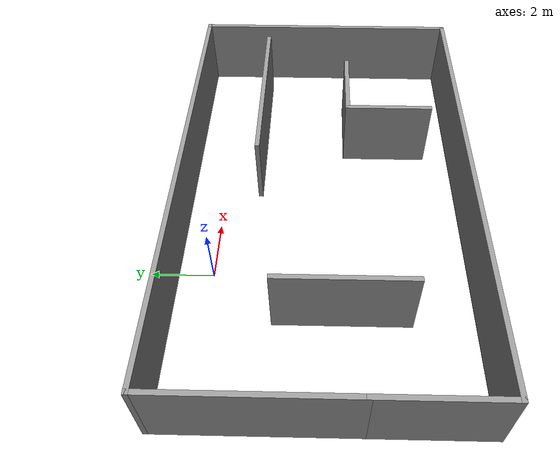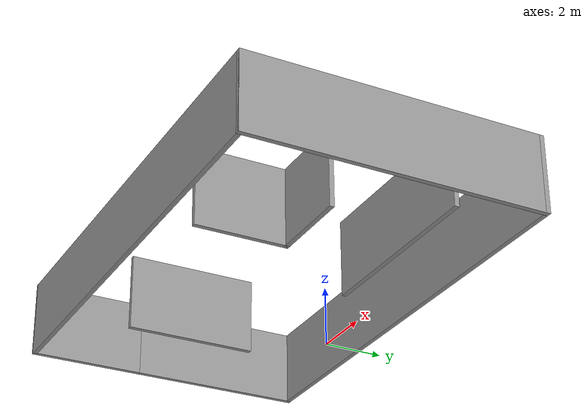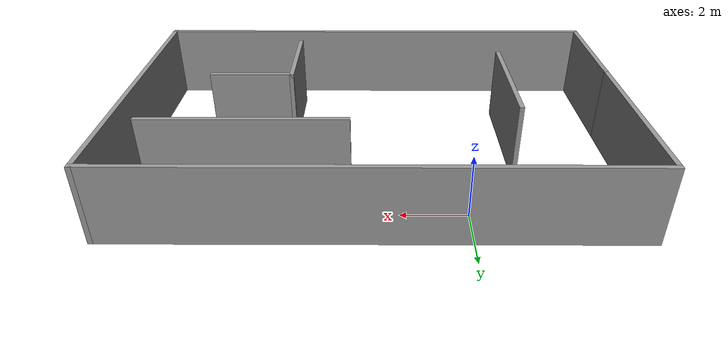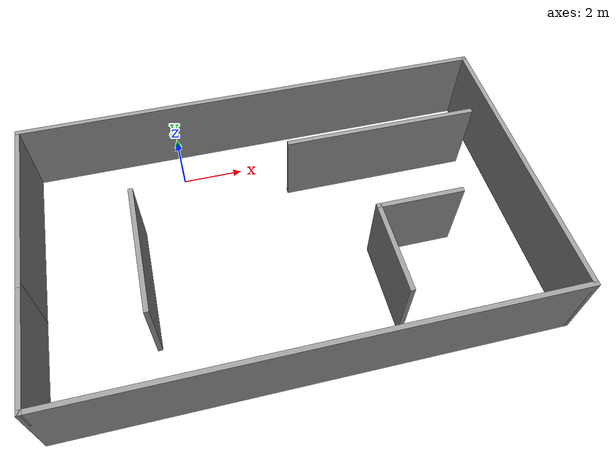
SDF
<?xml version='1.0'?>
<sdf version='1.7'>
  <model name='stan'>
    <pose>2.72187 -3.48309 0 0 -0 0</pose>
    <link name='Wall_10'>
      <collision name='Wall_10_Collision'>
        <geometry>
          <box>
            <size>6.25 0.15 2.5</size>
          </box>
        </geometry>
        <pose>0 0 1.25 0 -0 0</pose>
      </collision>
      <visual name='Wall_10_Visual'>
        <pose>0 0 1.25 0 -0 0</pose>
        <geometry>
          <box>
            <size>6.25 0.15 2.5</size>
          </box>
        </geometry>
        <material>
          <script>
            <uri>file://media/materials/scripts/gazebo.material</uri>
            <name>Gazebo/Grey</name>
          </script>
          <ambient>1 1 1 1</ambient>
        </material>
        <meta>
          <layer>0</layer>
        </meta>
      </visual>
      <pose>3.8179 2.2318 0 0 -0 0</pose>
    </link>
    <link name='Wall_12'>
      <collision name='Wall_12_Collision'>
        <geometry>
          <box>
            <size>3 0.15 2.5</size>
          </box>
        </geometry>
        <pose>0 0 1.25 0 -0 0</pose>
      </collision>
      <visual name='Wall_12_Visual'>
        <pose>0 0 1.25 0 -0 0</pose>
        <geometry>
          <box>
            <size>3 0.15 2.5</size>
          </box>
        </geometry>
        <material>
          <script>
            <uri>file://media/materials/scripts/gazebo.material</uri>
            <name>Gazebo/Grey</name>
          </script>
          <ambient>1 1 1 1</ambient>
        </material>
        <meta>
          <layer>0</layer>
        </meta>
      </visual>
      <pose>2.73791 -2.21805 0 0 -0 1.5708</pose>
    </link>
    <link name='Wall_13'>
      <collision name='Wall_13_Collision'>
        <geometry>
          <box>
            <size>2.75 0.15 2.5</size>
          </box>
        </geometry>
        <pose>0 0 1.25 0 -0 0</pose>
      </collision>
      <visual name='Wall_13_Visual'>
        <pose>0 0 1.25 0 -0 0</pose>
        <geometry>
          <box>
            <size>2.75 0.15 2.5</size>
          </box>
        </geometry>
        <material>
          <script>
            <uri>file://media/materials/scripts/gazebo.material</uri>
            <name>Gazebo/Grey</name>
          </script>
          <ambient>1 1 1 1</ambient>
        </material>
        <meta>
          <layer>0</layer>
        </meta>
      </visual>
      <pose>4.03791 -0.79305 0 0 -0 0</pose>
    </link>
    <link name='Wall_2'>
      <collision name='Wall_2_Collision'>
        <geometry>
          <box>
            <size>3.75 0.15 2.5</size>
          </box>
        </geometry>
        <pose>0 0 1.25 0 -0 0</pose>
      </collision>
      <visual name='Wall_2_Visual'>
        <pose>0 0 1.25 0 -0 0</pose>
        <geometry>
          <box>
            <size>3.75 0.15 2.5</size>
          </box>
        </geometry>
        <material>
          <script>
            <uri>file://media/materials/scripts/gazebo.material</uri>
            <name>Gazebo/Grey</name>
          </script>
          <ambient>1 1 1 1</ambient>
        </material>
        <meta>
          <layer>0</layer>
        </meta>
      </visual>
      <pose>-7.675 -2.875 0 0 -0 -1.5708</pose>
    </link>
    <link name='Wall_3'>
      <collision name='Wall_3_Collision'>
        <geometry>
          <box>
            <size>15.5 0.15 2.5</size>
          </box>
        </geometry>
        <pose>0 0 1.25 0 -0 0</pose>
      </collision>
      <visual name='Wall_3_Visual'>
        <pose>0 0 1.25 0 -0 0</pose>
        <geometry>
          <box>
            <size>15.5 0.15 2.5</size>
          </box>
        </geometry>
        <material>
          <script>
            <uri>file://media/materials/scripts/gazebo.material</uri>
            <name>Gazebo/Grey</name>
          </script>
          <ambient>1 1 1 1</ambient>
        </material>
        <meta>
          <layer>0</layer>
        </meta>
      </visual>
      <pose>-0 -4.675 0 0 -0 0</pose>
    </link>
    <link name='Wall_4'>
      <collision name='Wall_4_Collision'>
        <geometry>
          <box>
            <size>9.5 0.15 2.5</size>
          </box>
        </geometry>
        <pose>0 0 1.25 0 -0 0</pose>
      </collision>
      <visual name='Wall_4_Visual'>
        <pose>0 0 1.25 0 -0 0</pose>
        <geometry>
          <box>
            <size>9.5 0.15 2.5</size>
          </box>
        </geometry>
        <material>
          <script>
            <uri>file://media/materials/scripts/gazebo.material</uri>
            <name>Gazebo/Grey</name>
          </script>
          <ambient>1 1 1 1</ambient>
        </material>
        <meta>
          <layer>0</layer>
        </meta>
      </visual>
      <pose>7.675 0 0 0 -0 1.5708</pose>
    </link>
    <link name='Wall_5'>
      <collision name='Wall_5_Collision'>
        <geometry>
          <box>
            <size>15.5 0.15 2.5</size>
          </box>
        </geometry>
        <pose>0 0 1.25 0 -0 0</pose>
      </collision>
      <visual name='Wall_5_Visual'>
        <pose>0 0 1.25 0 -0 0</pose>
        <geometry>
          <box>
            <size>15.5 0.15 2.5</size>
          </box>
        </geometry>
        <material>
          <script>
            <uri>file://media/materials/scripts/gazebo.material</uri>
            <name>Gazebo/Grey</name>
          </script>
          <ambient>1 1 1 1</ambient>
        </material>
        <meta>
          <layer>0</layer>
        </meta>
      </visual>
      <pose>-0 4.675 0 0 -0 3.14159</pose>
    </link>
    <link name='Wall_6'>
      <collision name='Wall_6_Collision'>
        <geometry>
          <box>
            <size>5.9 0.15 2.5</size>
          </box>
        </geometry>
        <pose>0 0 1.25 0 -0 0</pose>
      </collision>
      <visual name='Wall_6_Visual'>
        <pose>0 0 1.25 0 -0 0</pose>
        <geometry>
          <box>
            <size>5.9 0.15 2.5</size>
          </box>
        </geometry>
        <material>
          <script>
            <uri>file://media/materials/scripts/gazebo.material</uri>
            <name>Gazebo/Grey</name>
          </script>
          <ambient>1 1 1 1</ambient>
        </material>
        <meta>
          <layer>0</layer>
        </meta>
      </visual>
      <pose>-7.675 1.8 0 0 -0 -1.5708</pose>
    </link>
    <link name='Wall_8'>
      <collision name='Wall_8_Collision'>
        <geometry>
          <box>
            <size>4.25 0.15 2.5</size>
          </box>
        </geometry>
        <pose>0 0 1.25 0 -0 0</pose>
      </collision>
      <visual name='Wall_8_Visual'>
        <pose>0 0 1.25 0 -0 0</pose>
        <geometry>
          <box>
            <size>4.25 0.15 2.5</size>
          </box>
        </geometry>
        <material>
          <script>
            <uri>file://media/materials/scripts/gazebo.material</uri>
            <name>Gazebo/Grey</name>
          </script>
          <ambient>1 1 1 1</ambient>
        </material>
        <meta>
          <layer>0</layer>
        </meta>
      </visual>
      <pose>-4.3682 -0.572865 0 0 -0 1.5708</pose>
    </link>
    <static>1</static>
  </model>
</sdf>
